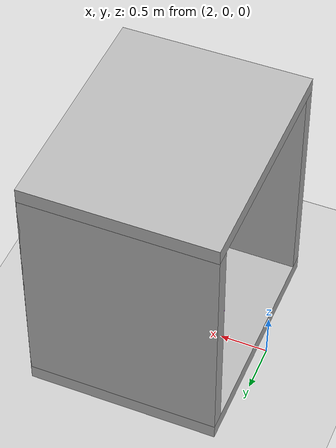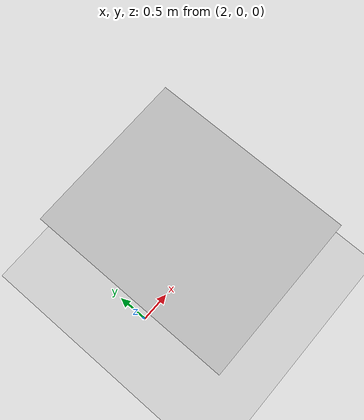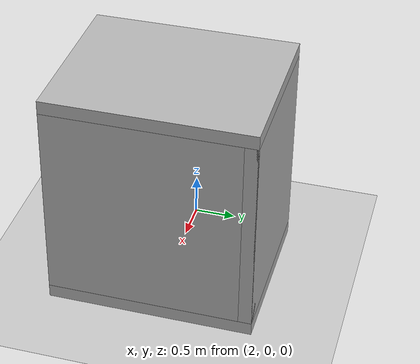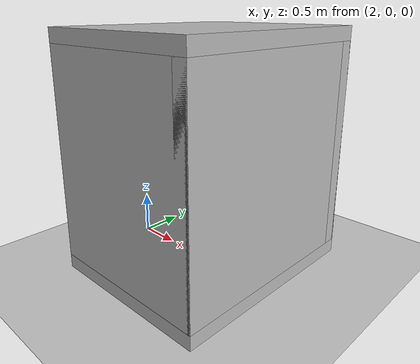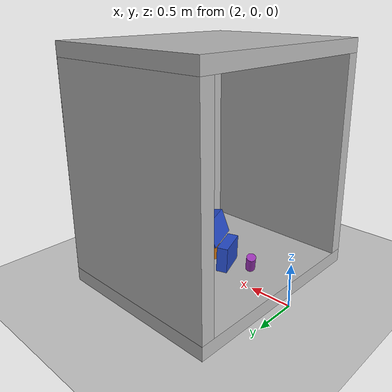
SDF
<sdf version="1.6">
 <world name="default">
  <light name="sun" type="directional">
   <pose>0 0 10 0 -0 0</pose>
   <diffuse>0.8 0.8 0.8 1</diffuse>
   <specular>0.1 0.1 0.1 1</specular>
   <attenuation>
    <range>1000</range>
    <constant>0.9</constant>
    <linear>0.01</linear>
    <quadratic>0.001</quadratic>
   </attenuation>
   <direction>-0.5 0.5 -1</direction>
  </light>
  <model name="ground_plane">
   <static>1</static>
   <link name="link">
    <collision name="collision">
     <geometry><plane><normal>0 0 1</normal><size>100 100</size></plane></geometry>
     <surface><friction><ode><mu>100</mu><mu2>50</mu2></ode></friction></surface>
    </collision>
    <visual name="visual">
     <cast_shadows>0</cast_shadows>
     <geometry><plane><normal>0 0 1</normal><size>100 100</size></plane></geometry>
     <material>
      <script><uri>file://media/materials/scripts/gazebo.material</uri><name>Gazebo/Grey</name></script>
     </material>
    </visual>
   </link>
  </model>
  <physics name="default_physics" default="0" type="ode">
   <real_time_update_rate>0</real_time_update_rate>
   <max_step_size>0.001</max_step_size>
   <real_time_factor>1</real_time_factor>
  </physics>
  <gravity>0 0 -9.8</gravity>
  <magnetic_field>6e-06 2.3e-05 -4.2e-05</magnetic_field>
  <atmosphere type="adiabatic"/>
  <scene><ambient>0.4 0.4 0.4 1</ambient><background>0.7 0.7 0.7 1</background><shadows>1</shadows></scene>
  <spherical_coordinates>
   <surface_model>EARTH_WGS84</surface_model>
   <latitude_deg>0</latitude_deg>
   <longitude_deg>0</longitude_deg>
   <elevation>0</elevation>
   <heading_deg>0</heading_deg>
  </spherical_coordinates>
  <model name="container">
   <link name="container">
    <inertial>
     <pose>0.22439 0 1.64098 0 -0 0</pose>
     <mass>205</mass>
     <inertia>
      <ixx>329.883</ixx>
      <ixy>1.59439e-15</ixy>
      <ixz>12.9249</ixz>
      <iyy>229.817</iyy>
      <iyz>1.16598e-14</iyz>
      <izz>267.609</izz>
     </inertia>
    </inertial>
    <collision name="container_back_collision">
     <pose>0.92 0 1.36 0 -0 0</pose>
     <geometry><box><size>0.16 2.45 2.4</size></box></geometry>
    </collision>
    <collision name="container_bottom_collision_1">
     <pose>0 0 0.08 0 -0 0</pose>
     <geometry><box><size>2 2.45 0.16</size></box></geometry>
    </collision>
    <collision name="container_left_collision_2">
     <pose>0 1.145 1.36 0 -0 0</pose>
     <geometry><box><size>2 0.16 2.4</size></box></geometry>
    </collision>
    <collision name="container_right_collision_3">
     <pose>0 -1.145 1.36 0 -0 0</pose>
     <geometry><box><size>2 0.16 2.4</size></box></geometry>
    </collision>
    <collision name="container_top_collision_4">
     <pose>0 0 2.64 0 -0 0</pose>
     <geometry><box><size>2 2.45 0.16</size></box></geometry>
    </collision>
    <visual name="container_back_visual">
     <pose>0.92 0 1.36 0 -0 0</pose>
     <geometry><box><size>0.16 2.45 2.4</size></box></geometry>
    </visual>
    <visual name="container_bottom_visual_1">
     <pose>0 0 0.08 0 -0 0</pose>
     <geometry><box><size>2 2.45 0.16</size></box></geometry>
    </visual>
    <visual name="container_left_visual_2">
     <pose>0 1.145 1.36 0 -0 0</pose>
     <geometry><box><size>2 0.16 2.4</size></box></geometry>
    </visual>
    <visual name="container_right_visual_3">
     <pose>0 -1.145 1.36 0 -0 0</pose>
     <geometry><box><size>2 0.16 2.4</size></box></geometry>
    </visual>
    <visual name="container_top_visual_4">
     <pose>0 0 2.64 0 -0 0</pose>
     <geometry><box><size>2 2.45 0.16</size></box></geometry>
    </visual>
   </link>
   <pose>3.10043 0.000492 -2e-06 -0 2e-06 -0.000164</pose>
  </model>
  <model name="roblog-dhl-box-blue-simple-0-1256">
   <link name="link">
    <inertial>
     <mass>0.25</mass>
     <inertia>
      <ixx>0.00218083</ixx>
      <ixy>0</ixy>
      <ixz>0</ixz>
      <iyy>0.00473308</iyy>
      <iyz>0</iyz>
      <izz>0.00321375</izz>
     </inertia>
    </inertial>
    <collision name="link_collision"><geometry><box><size>0.372 0.126 0.298</size></box></geometry></collision>
    <visual name="link_visual">
     <geometry><box><size>0.372 0.126 0.298</size></box></geometry>
     <material>
      <script><name>Gazebo/Blue</name><uri>file://media/materials/scripts/gazebo.material</uri></script>
     </material>
    </visual>
   </link>
   <pose>2.87472 -1.4e-05 0.311216 0.036777 -0 -1.19408</pose>
  </model>
  <model name="roblog-dhl-box-blue-simple-1-1257">
   <link name="link">
    <inertial>
     <mass>0.25</mass>
     <inertia>
      <ixx>0.00218083</ixx>
      <ixy>0</ixy>
      <ixz>0</ixz>
      <iyy>0.00473308</iyy>
      <iyz>0</iyz>
      <izz>0.00321375</izz>
     </inertia>
    </inertial>
    <collision name="link_collision"><geometry><box><size>0.372 0.126 0.298</size></box></geometry></collision>
    <visual name="link_visual">
     <geometry><box><size>0.372 0.126 0.298</size></box></geometry>
     <material>
      <script><name>Gazebo/Blue</name><uri>file://media/materials/scripts/gazebo.material</uri></script>
     </material>
    </visual>
   </link>
   <pose>3.03244 0.05419 0.592254 -0.259187 -0.155844 -1.28018</pose>
  </model>
  <model name="roblog-vanish-detergent-simple-2-1258">
   <link name="link">
    <inertial>
     <mass>0.08</mass>
     <inertia>
      <ixx>0.000324987</ixx>
      <ixy>0</ixy>
      <ixz>0</ixz>
      <iyy>0.000324987</iyy>
      <iyz>0</iyz>
      <izz>0.00011664</izz>
     </inertia>
    </inertial>
    <collision name="link_collision">
     <geometry><cylinder><length>0.2</length><radius>0.054</radius></cylinder></geometry>
    </collision>
    <visual name="link_visual">
     <geometry><cylinder><length>0.2</length><radius>0.054</radius></cylinder></geometry>
     <material>
      <script><name>Gazebo/PurpleGlow</name><uri>file://media/materials/scripts/gazebo.material</uri></script>
     </material>
    </visual>
    <velocity_decay><linear>0.005</linear><angular>0.005</angular></velocity_decay>
   </link>
   <pose>2.57679 -0.063621 0.273489 -0.000104 -0.442151 -0.802986</pose>
  </model>
  <model name="roblog-maisels-barrel-simple-3-1259">
   <link name="link">
    <inertial>
     <mass>0.54</mass>
     <inertia>
      <ixx>0.00354312</ixx>
      <ixy>0</ixy>
      <ixz>0</ixz>
      <iyy>0.00354312</iyy>
      <iyz>0</iyz>
      <izz>0.00181548</izz>
     </inertia>
    </inertial>
    <collision name="link_collision">
     <geometry><cylinder><length>0.242</length><radius>0.082</radius></cylinder></geometry>
    </collision>
    <visual name="link_visual">
     <geometry><cylinder><length>0.242</length><radius>0.082</radius></cylinder></geometry>
     <material>
      <script><name>Gazebo/Orange</name><uri>file://media/materials/scripts/gazebo.material</uri></script>
     </material>
    </visual>
    <velocity_decay><linear>0.005</linear><angular>0.005</angular></velocity_decay>
   </link>
   <pose>3.09272 0.017663 0.303688 -0.158813 -0.380553 -0.380141</pose>
  </model>
 </world>
</sdf>
